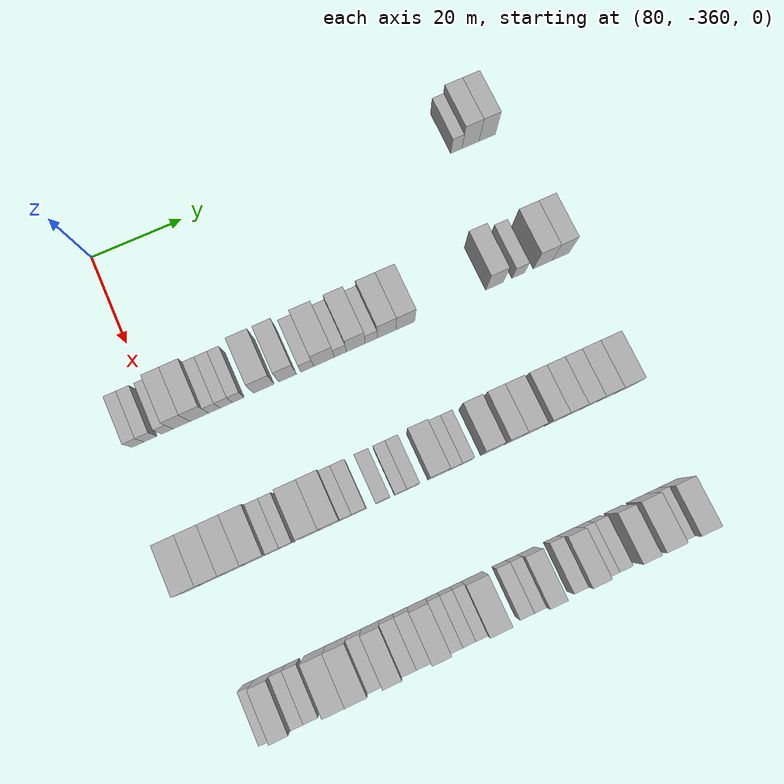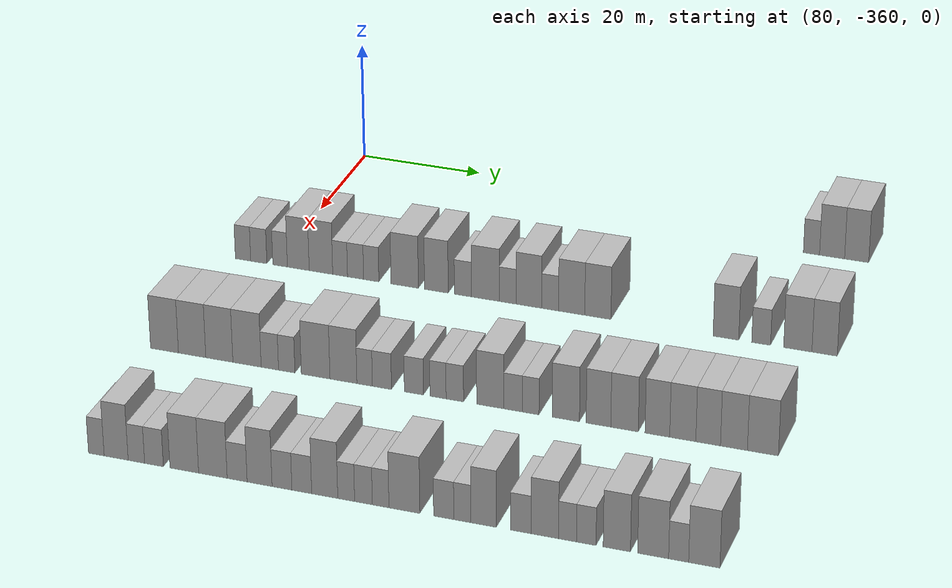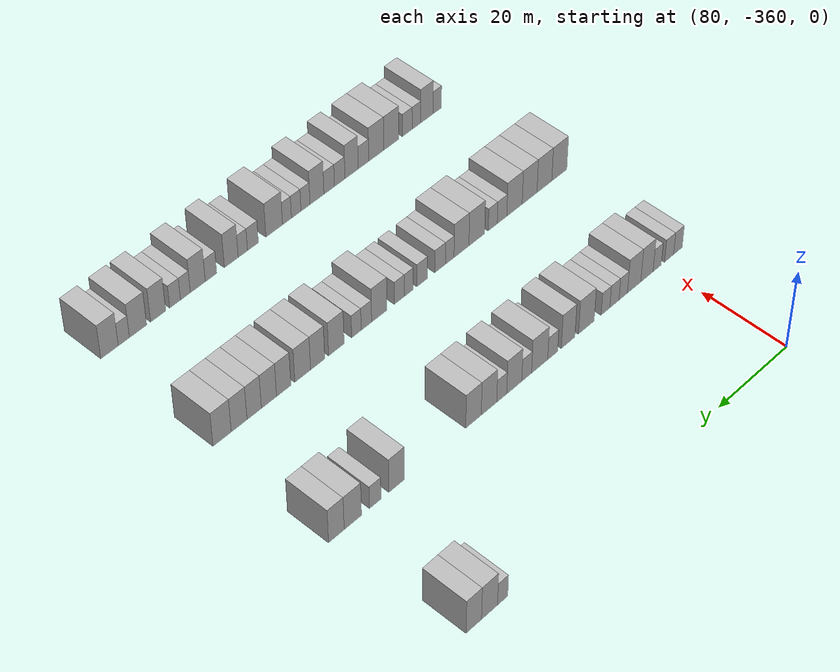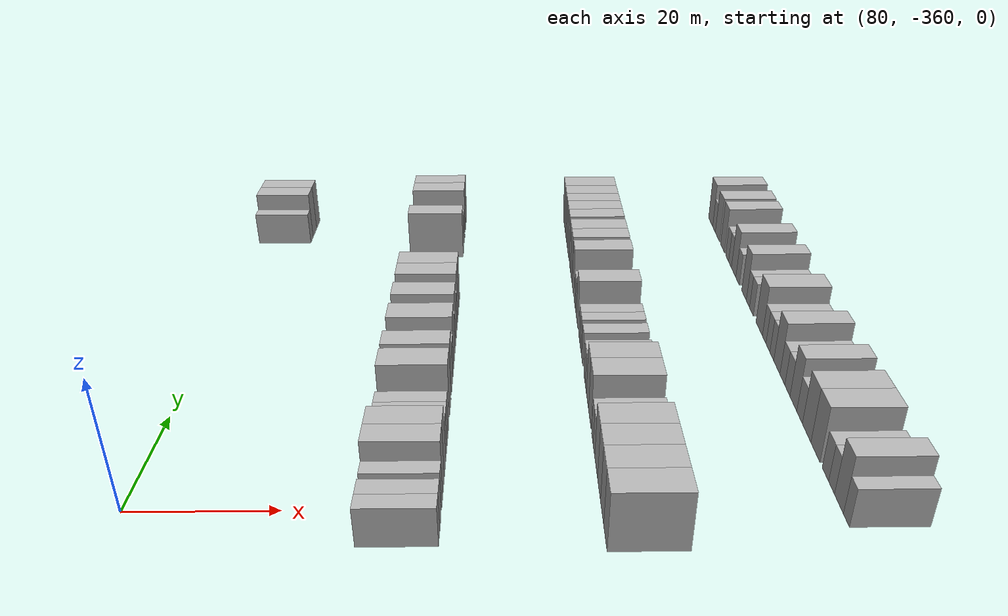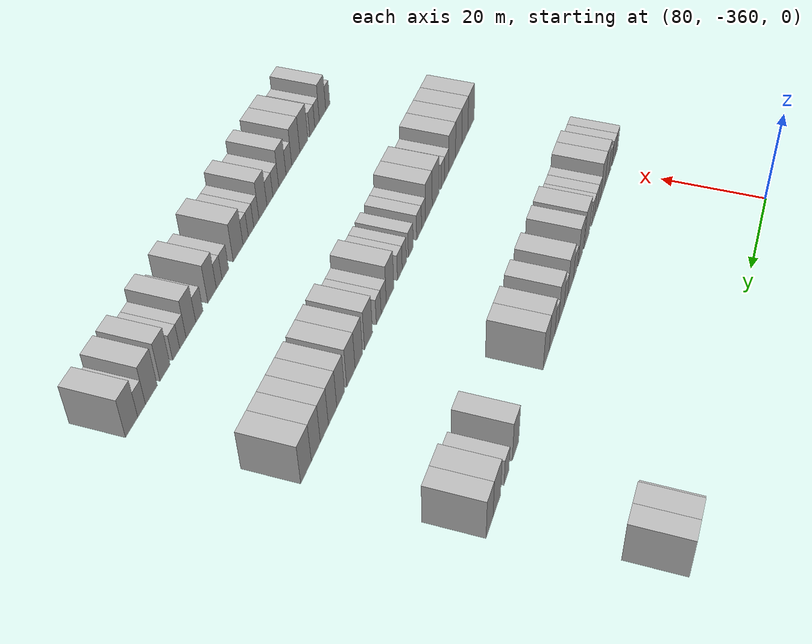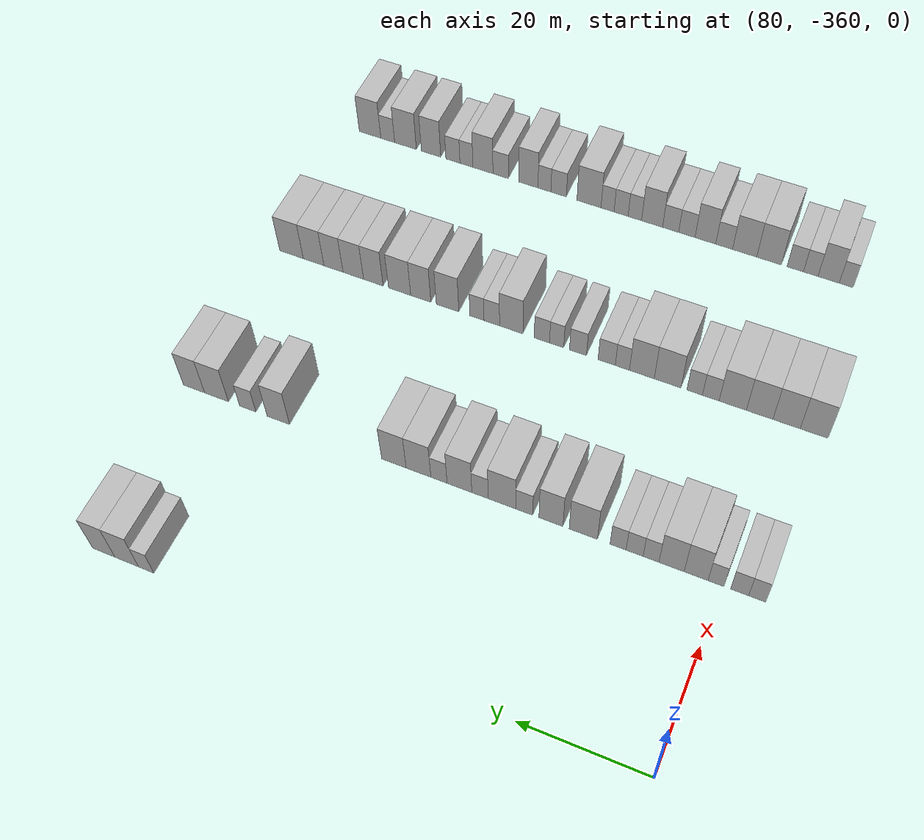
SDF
<sdf version="1.6">
 <world name="default">
  <model name="building_524">
   <static>1</static>
   <pose>85.0000 -281.6470 0 0.000000 0.000000 0.000000</pose>
   <link name="link">
    <pose>0 0 3.00 0 0 0</pose>
    <collision name="collision"><geometry><box><size>10.0000 2.5915 6.0000</size></box></geometry></collision>
    <visual name="visual">
     <cast_shadows>0</cast_shadows>
     <geometry><box><size>10.0000 2.5915 6.0000</size></box></geometry>
     <material>
      <script>
       <uri>model://HANNAS_wall/materials/scripts</uri>
       <uri>model://HANNAS_wall/materials/textures</uri>
       <name>vrc/HANNAS_wall</name>
      </script>
     </material>
    </visual>
   </link>
  </model>
  <model name="building_525">
   <static>1</static>
   <pose>85.0000 -278.3495 0 0.000000 0.000000 0.000000</pose>
   <link name="link">
    <pose>0 0 4.50 0 0 0</pose>
    <collision name="collision"><geometry><box><size>10.0000 4.0034 9.0000</size></box></geometry></collision>
    <visual name="visual">
     <cast_shadows>0</cast_shadows>
     <geometry><box><size>10.0000 4.0034 9.0000</size></box></geometry>
     <material>
      <script>
       <uri>model://HANNAS_wall/materials/scripts</uri>
       <uri>model://HANNAS_wall/materials/textures</uri>
       <name>vrc/HANNAS_wall</name>
      </script>
     </material>
    </visual>
   </link>
  </model>
  <model name="building_526">
   <static>1</static>
   <pose>85.0000 -274.4252 0 0.000000 0.000000 0.000000</pose>
   <link name="link">
    <pose>0 0 4.50 0 0 0</pose>
    <collision name="collision"><geometry><box><size>10.0000 3.8453 9.0000</size></box></geometry></collision>
    <visual name="visual">
     <cast_shadows>0</cast_shadows>
     <geometry><box><size>10.0000 3.8453 9.0000</size></box></geometry>
     <material>
      <script>
       <uri>model://HANNAS_wall/materials/scripts</uri>
       <uri>model://HANNAS_wall/materials/textures</uri>
       <name>vrc/HANNAS_wall</name>
      </script>
     </material>
    </visual>
   </link>
  </model>
  <model name="building_739">
   <static>1</static>
   <pose>115.0000 -365.2040 0 0.000000 0.000000 0.000000</pose>
   <link name="link">
    <pose>0 0 3.00 0 0 0</pose>
    <collision name="collision"><geometry><box><size>10.0000 2.5733 6.0000</size></box></geometry></collision>
    <visual name="visual">
     <cast_shadows>0</cast_shadows>
     <geometry><box><size>10.0000 2.5733 6.0000</size></box></geometry>
     <material>
      <script>
       <uri>model://HANNAS_wall/materials/scripts</uri>
       <uri>model://HANNAS_wall/materials/textures</uri>
       <name>vrc/HANNAS_wall</name>
      </script>
     </material>
    </visual>
   </link>
  </model>
  <model name="building_740">
   <static>1</static>
   <pose>115.0000 -362.5644 0 0.000000 0.000000 0.000000</pose>
   <link name="link">
    <pose>0 0 3.00 0 0 0</pose>
    <collision name="collision"><geometry><box><size>10.0000 2.7059 6.0000</size></box></geometry></collision>
    <visual name="visual">
     <cast_shadows>0</cast_shadows>
     <geometry><box><size>10.0000 2.7059 6.0000</size></box></geometry>
     <material>
      <script>
       <uri>model://HANNAS_wall/materials/scripts</uri>
       <uri>model://HANNAS_wall/materials/textures</uri>
       <name>vrc/HANNAS_wall</name>
      </script>
     </material>
    </visual>
   </link>
  </model>
  <model name="building_741">
   <static>1</static>
   <pose>115.0000 -358.9954 0 0.000000 0.000000 0.000000</pose>
   <link name="link">
    <pose>0 0 3.00 0 0 0</pose>
    <collision name="collision"><geometry><box><size>10.0000 2.4321 6.0000</size></box></geometry></collision>
    <visual name="visual">
     <cast_shadows>0</cast_shadows>
     <geometry><box><size>10.0000 2.4321 6.0000</size></box></geometry>
     <material>
      <script>
       <uri>model://HANNAS_wall/materials/scripts</uri>
       <uri>model://HANNAS_wall/materials/textures</uri>
       <name>vrc/HANNAS_wall</name>
      </script>
     </material>
    </visual>
   </link>
  </model>
  <model name="building_742">
   <static>1</static>
   <pose>115.0000 -355.9613 0 0.000000 0.000000 0.000000</pose>
   <link name="link">
    <pose>0 0 4.50 0 0 0</pose>
    <collision name="collision"><geometry><box><size>10.0000 3.6362 9.0000</size></box></geometry></collision>
    <visual name="visual">
     <cast_shadows>0</cast_shadows>
     <geometry><box><size>10.0000 3.6362 9.0000</size></box></geometry>
     <material>
      <script>
       <uri>model://HANNAS_wall/materials/scripts</uri>
       <uri>model://HANNAS_wall/materials/textures</uri>
       <name>vrc/HANNAS_wall</name>
      </script>
     </material>
    </visual>
   </link>
  </model>
  <model name="building_743">
   <static>1</static>
   <pose>115.0000 -352.1924 0 0.000000 0.000000 0.000000</pose>
   <link name="link">
    <pose>0 0 4.50 0 0 0</pose>
    <collision name="collision"><geometry><box><size>10.0000 3.9015 9.0000</size></box></geometry></collision>
    <visual name="visual">
     <cast_shadows>0</cast_shadows>
     <geometry><box><size>10.0000 3.9015 9.0000</size></box></geometry>
     <material>
      <script>
       <uri>model://HANNAS_wall/materials/scripts</uri>
       <uri>model://HANNAS_wall/materials/textures</uri>
       <name>vrc/HANNAS_wall</name>
      </script>
     </material>
    </visual>
   </link>
  </model>
  <model name="building_744">
   <static>1</static>
   <pose>115.0000 -349.0168 0 0.000000 0.000000 0.000000</pose>
   <link name="link">
    <pose>0 0 3.00 0 0 0</pose>
    <collision name="collision"><geometry><box><size>10.0000 2.4496 6.0000</size></box></geometry></collision>
    <visual name="visual">
     <cast_shadows>0</cast_shadows>
     <geometry><box><size>10.0000 2.4496 6.0000</size></box></geometry>
     <material>
      <script>
       <uri>model://HANNAS_wall/materials/scripts</uri>
       <uri>model://HANNAS_wall/materials/textures</uri>
       <name>vrc/HANNAS_wall</name>
      </script>
     </material>
    </visual>
   </link>
  </model>
  <model name="building_745">
   <static>1</static>
   <pose>115.0000 -346.4626 0 0.000000 0.000000 0.000000</pose>
   <link name="link">
    <pose>0 0 3.00 0 0 0</pose>
    <collision name="collision"><geometry><box><size>10.0000 2.6588 6.0000</size></box></geometry></collision>
    <visual name="visual">
     <cast_shadows>0</cast_shadows>
     <geometry><box><size>10.0000 2.6588 6.0000</size></box></geometry>
     <material>
      <script>
       <uri>model://HANNAS_wall/materials/scripts</uri>
       <uri>model://HANNAS_wall/materials/textures</uri>
       <name>vrc/HANNAS_wall</name>
      </script>
     </material>
    </visual>
   </link>
  </model>
  <model name="building_746">
   <static>1</static>
   <pose>115.0000 -343.8816 0 0.000000 0.000000 0.000000</pose>
   <link name="link">
    <pose>0 0 3.00 0 0 0</pose>
    <collision name="collision"><geometry><box><size>10.0000 2.5032 6.0000</size></box></geometry></collision>
    <visual name="visual">
     <cast_shadows>0</cast_shadows>
     <geometry><box><size>10.0000 2.5032 6.0000</size></box></geometry>
     <material>
      <script>
       <uri>model://HANNAS_wall/materials/scripts</uri>
       <uri>model://HANNAS_wall/materials/textures</uri>
       <name>vrc/HANNAS_wall</name>
      </script>
     </material>
    </visual>
   </link>
  </model>
  <model name="building_747">
   <static>1</static>
   <pose>115.0000 -338.3948 0 0.000000 0.000000 0.000000</pose>
   <link name="link">
    <pose>0 0 4.50 0 0 0</pose>
    <collision name="collision"><geometry><box><size>10.0000 4.4703 9.0000</size></box></geometry></collision>
    <visual name="visual">
     <cast_shadows>0</cast_shadows>
     <geometry><box><size>10.0000 4.4703 9.0000</size></box></geometry>
     <material>
      <script>
       <uri>model://HANNAS_wall/materials/scripts</uri>
       <uri>model://HANNAS_wall/materials/textures</uri>
       <name>vrc/HANNAS_wall</name>
      </script>
     </material>
    </visual>
   </link>
  </model>
  <model name="building_748">
   <static>1</static>
   <pose>115.0000 -333.2340 0 0.000000 0.000000 0.000000</pose>
   <link name="link">
    <pose>0 0 4.50 0 0 0</pose>
    <collision name="collision"><geometry><box><size>10.0000 3.8513 9.0000</size></box></geometry></collision>
    <visual name="visual">
     <cast_shadows>0</cast_shadows>
     <geometry><box><size>10.0000 3.8513 9.0000</size></box></geometry>
     <material>
      <script>
       <uri>model://HANNAS_wall/materials/scripts</uri>
       <uri>model://HANNAS_wall/materials/textures</uri>
       <name>vrc/HANNAS_wall</name>
      </script>
     </material>
    </visual>
   </link>
  </model>
  <model name="building_749">
   <static>1</static>
   <pose>115.0000 -328.9212 0 0.000000 0.000000 0.000000</pose>
   <link name="link">
    <pose>0 0 3.00 0 0 0</pose>
    <collision name="collision"><geometry><box><size>10.0000 2.7742 6.0000</size></box></geometry></collision>
    <visual name="visual">
     <cast_shadows>0</cast_shadows>
     <geometry><box><size>10.0000 2.7742 6.0000</size></box></geometry>
     <material>
      <script>
       <uri>model://HANNAS_wall/materials/scripts</uri>
       <uri>model://HANNAS_wall/materials/textures</uri>
       <name>vrc/HANNAS_wall</name>
      </script>
     </material>
    </visual>
   </link>
  </model>
  <model name="building_750">
   <static>1</static>
   <pose>115.0000 -325.2993 0 0.000000 0.000000 0.000000</pose>
   <link name="link">
    <pose>0 0 4.50 0 0 0</pose>
    <collision name="collision"><geometry><box><size>10.0000 4.4696 9.0000</size></box></geometry></collision>
    <visual name="visual">
     <cast_shadows>0</cast_shadows>
     <geometry><box><size>10.0000 4.4696 9.0000</size></box></geometry>
     <material>
      <script>
       <uri>model://HANNAS_wall/materials/scripts</uri>
       <uri>model://HANNAS_wall/materials/textures</uri>
       <name>vrc/HANNAS_wall</name>
      </script>
     </material>
    </visual>
   </link>
  </model>
  <model name="building_751">
   <static>1</static>
   <pose>115.0000 -321.7180 0 0.000000 0.000000 0.000000</pose>
   <link name="link">
    <pose>0 0 3.00 0 0 0</pose>
    <collision name="collision"><geometry><box><size>10.0000 2.6929 6.0000</size></box></geometry></collision>
    <visual name="visual">
     <cast_shadows>0</cast_shadows>
     <geometry><box><size>10.0000 2.6929 6.0000</size></box></geometry>
     <material>
      <script>
       <uri>model://HANNAS_wall/materials/scripts</uri>
       <uri>model://HANNAS_wall/materials/textures</uri>
       <name>vrc/HANNAS_wall</name>
      </script>
     </material>
    </visual>
   </link>
  </model>
  <model name="building_752">
   <static>1</static>
   <pose>115.0000 -318.3235 0 0.000000 0.000000 0.000000</pose>
   <link name="link">
    <pose>0 0 4.50 0 0 0</pose>
    <collision name="collision"><geometry><box><size>10.0000 4.0961 9.0000</size></box></geometry></collision>
    <visual name="visual">
     <cast_shadows>0</cast_shadows>
     <geometry><box><size>10.0000 4.0961 9.0000</size></box></geometry>
     <material>
      <script>
       <uri>model://HANNAS_wall/materials/scripts</uri>
       <uri>model://HANNAS_wall/materials/textures</uri>
       <name>vrc/HANNAS_wall</name>
      </script>
     </material>
    </visual>
   </link>
  </model>
  <model name="building_753">
   <static>1</static>
   <pose>115.0000 -314.9280 0 0.000000 0.000000 0.000000</pose>
   <link name="link">
    <pose>0 0 3.00 0 0 0</pose>
    <collision name="collision"><geometry><box><size>10.0000 2.6949 6.0000</size></box></geometry></collision>
    <visual name="visual">
     <cast_shadows>0</cast_shadows>
     <geometry><box><size>10.0000 2.6949 6.0000</size></box></geometry>
     <material>
      <script>
       <uri>model://HANNAS_wall/materials/scripts</uri>
       <uri>model://HANNAS_wall/materials/textures</uri>
       <name>vrc/HANNAS_wall</name>
      </script>
     </material>
    </visual>
   </link>
  </model>
  <model name="building_754">
   <static>1</static>
   <pose>115.0000 -311.5054 0 0.000000 0.000000 0.000000</pose>
   <link name="link">
    <pose>0 0 4.50 0 0 0</pose>
    <collision name="collision"><geometry><box><size>10.0000 4.1504 9.0000</size></box></geometry></collision>
    <visual name="visual">
     <cast_shadows>0</cast_shadows>
     <geometry><box><size>10.0000 4.1504 9.0000</size></box></geometry>
     <material>
      <script>
       <uri>model://HANNAS_wall/materials/scripts</uri>
       <uri>model://HANNAS_wall/materials/textures</uri>
       <name>vrc/HANNAS_wall</name>
      </script>
     </material>
    </visual>
   </link>
  </model>
  <model name="building_755">
   <static>1</static>
   <pose>115.0000 -307.3601 0 0.000000 0.000000 0.000000</pose>
   <link name="link">
    <pose>0 0 4.50 0 0 0</pose>
    <collision name="collision"><geometry><box><size>10.0000 4.1402 9.0000</size></box></geometry></collision>
    <visual name="visual">
     <cast_shadows>0</cast_shadows>
     <geometry><box><size>10.0000 4.1402 9.0000</size></box></geometry>
     <material>
      <script>
       <uri>model://HANNAS_wall/materials/scripts</uri>
       <uri>model://HANNAS_wall/materials/textures</uri>
       <name>vrc/HANNAS_wall</name>
      </script>
     </material>
    </visual>
   </link>
  </model>
  <model name="building_756">
   <static>1</static>
   <pose>115.0000 -287.3553 0 0.000000 0.000000 0.000000</pose>
   <link name="link">
    <pose>0 0 4.50 0 0 0</pose>
    <collision name="collision"><geometry><box><size>10.0000 3.9565 9.0000</size></box></geometry></collision>
    <visual name="visual">
     <cast_shadows>0</cast_shadows>
     <geometry><box><size>10.0000 3.9565 9.0000</size></box></geometry>
     <material>
      <script>
       <uri>model://HANNAS_wall/materials/scripts</uri>
       <uri>model://HANNAS_wall/materials/textures</uri>
       <name>vrc/HANNAS_wall</name>
      </script>
     </material>
    </visual>
   </link>
  </model>
  <model name="building_757">
   <static>1</static>
   <pose>115.0000 -281.9286 0 0.000000 0.000000 0.000000</pose>
   <link name="link">
    <pose>0 0 3.00 0 0 0</pose>
    <collision name="collision"><geometry><box><size>10.0000 2.8968 6.0000</size></box></geometry></collision>
    <visual name="visual">
     <cast_shadows>0</cast_shadows>
     <geometry><box><size>10.0000 2.8968 6.0000</size></box></geometry>
     <material>
      <script>
       <uri>model://HANNAS_wall/materials/scripts</uri>
       <uri>model://HANNAS_wall/materials/textures</uri>
       <name>vrc/HANNAS_wall</name>
      </script>
     </material>
    </visual>
   </link>
  </model>
  <model name="building_758">
   <static>1</static>
   <pose>115.0000 -276.3266 0 0.000000 0.000000 0.000000</pose>
   <link name="link">
    <pose>0 0 4.50 0 0 0</pose>
    <collision name="collision"><geometry><box><size>10.0000 4.3071 9.0000</size></box></geometry></collision>
    <visual name="visual">
     <cast_shadows>0</cast_shadows>
     <geometry><box><size>10.0000 4.3071 9.0000</size></box></geometry>
     <material>
      <script>
       <uri>model://HANNAS_wall/materials/scripts</uri>
       <uri>model://HANNAS_wall/materials/textures</uri>
       <name>vrc/HANNAS_wall</name>
      </script>
     </material>
    </visual>
   </link>
  </model>
  <model name="building_759">
   <static>1</static>
   <pose>115.0000 -272.2462 0 0.000000 0.000000 0.000000</pose>
   <link name="link">
    <pose>0 0 4.50 0 0 0</pose>
    <collision name="collision"><geometry><box><size>10.0000 3.8539 9.0000</size></box></geometry></collision>
    <visual name="visual">
     <cast_shadows>0</cast_shadows>
     <geometry><box><size>10.0000 3.8539 9.0000</size></box></geometry>
     <material>
      <script>
       <uri>model://HANNAS_wall/materials/scripts</uri>
       <uri>model://HANNAS_wall/materials/textures</uri>
       <name>vrc/HANNAS_wall</name>
      </script>
     </material>
    </visual>
   </link>
  </model>
  <model name="building_975">
   <static>1</static>
   <pose>145.0000 -365.3476 0 0.000000 0.000000 0.000000</pose>
   <link name="link">
    <pose>0 0 4.50 0 0 0</pose>
    <collision name="collision"><geometry><box><size>10.0000 4.4797 9.0000</size></box></geometry></collision>
    <visual name="visual">
     <cast_shadows>0</cast_shadows>
     <geometry><box><size>10.0000 4.4797 9.0000</size></box></geometry>
     <material>
      <script>
       <uri>model://HANNAS_wall/materials/scripts</uri>
       <uri>model://HANNAS_wall/materials/textures</uri>
       <name>vrc/HANNAS_wall</name>
      </script>
     </material>
    </visual>
   </link>
  </model>
  <model name="building_976">
   <static>1</static>
   <pose>145.0000 -360.9086 0 0.000000 0.000000 0.000000</pose>
   <link name="link">
    <pose>0 0 4.50 0 0 0</pose>
    <collision name="collision"><geometry><box><size>10.0000 4.3983 9.0000</size></box></geometry></collision>
    <visual name="visual">
     <cast_shadows>0</cast_shadows>
     <geometry><box><size>10.0000 4.3983 9.0000</size></box></geometry>
     <material>
      <script>
       <uri>model://HANNAS_wall/materials/scripts</uri>
       <uri>model://HANNAS_wall/materials/textures</uri>
       <name>vrc/HANNAS_wall</name>
      </script>
     </material>
    </visual>
   </link>
  </model>
  <model name="building_977">
   <static>1</static>
   <pose>145.0000 -356.5483 0 0.000000 0.000000 0.000000</pose>
   <link name="link">
    <pose>0 0 4.50 0 0 0</pose>
    <collision name="collision"><geometry><box><size>10.0000 4.3223 9.0000</size></box></geometry></collision>
    <visual name="visual">
     <cast_shadows>0</cast_shadows>
     <geometry><box><size>10.0000 4.3223 9.0000</size></box></geometry>
     <material>
      <script>
       <uri>model://HANNAS_wall/materials/scripts</uri>
       <uri>model://HANNAS_wall/materials/textures</uri>
       <name>vrc/HANNAS_wall</name>
      </script>
     </material>
    </visual>
   </link>
  </model>
  <model name="building_978">
   <static>1</static>
   <pose>145.0000 -352.1425 0 0.000000 0.000000 0.000000</pose>
   <link name="link">
    <pose>0 0 4.50 0 0 0</pose>
    <collision name="collision"><geometry><box><size>10.0000 4.4893 9.0000</size></box></geometry></collision>
    <visual name="visual">
     <cast_shadows>0</cast_shadows>
     <geometry><box><size>10.0000 4.4893 9.0000</size></box></geometry>
     <material>
      <script>
       <uri>model://HANNAS_wall/materials/scripts</uri>
       <uri>model://HANNAS_wall/materials/textures</uri>
       <name>vrc/HANNAS_wall</name>
      </script>
     </material>
    </visual>
   </link>
  </model>
  <model name="building_979">
   <static>1</static>
   <pose>145.0000 -348.5220 0 0.000000 0.000000 0.000000</pose>
   <link name="link">
    <pose>0 0 3.00 0 0 0</pose>
    <collision name="collision"><geometry><box><size>10.0000 2.7518 6.0000</size></box></geometry></collision>
    <visual name="visual">
     <cast_shadows>0</cast_shadows>
     <geometry><box><size>10.0000 2.7518 6.0000</size></box></geometry>
     <material>
      <script>
       <uri>model://HANNAS_wall/materials/scripts</uri>
       <uri>model://HANNAS_wall/materials/textures</uri>
       <name>vrc/HANNAS_wall</name>
      </script>
     </material>
    </visual>
   </link>
  </model>
  <model name="building_980">
   <static>1</static>
   <pose>145.0000 -345.8507 0 0.000000 0.000000 0.000000</pose>
   <link name="link">
    <pose>0 0 3.00 0 0 0</pose>
    <collision name="collision"><geometry><box><size>10.0000 2.5907 6.0000</size></box></geometry></collision>
    <visual name="visual">
     <cast_shadows>0</cast_shadows>
     <geometry><box><size>10.0000 2.5907 6.0000</size></box></geometry>
     <material>
      <script>
       <uri>model://HANNAS_wall/materials/scripts</uri>
       <uri>model://HANNAS_wall/materials/textures</uri>
       <name>vrc/HANNAS_wall</name>
      </script>
     </material>
    </visual>
   </link>
  </model>
  <model name="building_981">
   <static>1</static>
   <pose>145.0000 -341.3061 0 0.000000 0.000000 0.000000</pose>
   <link name="link">
    <pose>0 0 4.50 0 0 0</pose>
    <collision name="collision"><geometry><box><size>10.0000 4.4986 9.0000</size></box></geometry></collision>
    <visual name="visual">
     <cast_shadows>0</cast_shadows>
     <geometry><box><size>10.0000 4.4986 9.0000</size></box></geometry>
     <material>
      <script>
       <uri>model://HANNAS_wall/materials/scripts</uri>
       <uri>model://HANNAS_wall/materials/textures</uri>
       <name>vrc/HANNAS_wall</name>
      </script>
     </material>
    </visual>
   </link>
  </model>
  <model name="building_982">
   <static>1</static>
   <pose>145.0000 -336.9558 0 0.000000 0.000000 0.000000</pose>
   <link name="link">
    <pose>0 0 4.50 0 0 0</pose>
    <collision name="collision"><geometry><box><size>10.0000 4.2020 9.0000</size></box></geometry></collision>
    <visual name="visual">
     <cast_shadows>0</cast_shadows>
     <geometry><box><size>10.0000 4.2020 9.0000</size></box></geometry>
     <material>
      <script>
       <uri>model://HANNAS_wall/materials/scripts</uri>
       <uri>model://HANNAS_wall/materials/textures</uri>
       <name>vrc/HANNAS_wall</name>
      </script>
     </material>
    </visual>
   </link>
  </model>
  <model name="building_983">
   <static>1</static>
   <pose>145.0000 -333.6480 0 0.000000 0.000000 0.000000</pose>
   <link name="link">
    <pose>0 0 3.00 0 0 0</pose>
    <collision name="collision"><geometry><box><size>10.0000 2.4136 6.0000</size></box></geometry></collision>
    <visual name="visual">
     <cast_shadows>0</cast_shadows>
     <geometry><box><size>10.0000 2.4136 6.0000</size></box></geometry>
     <material>
      <script>
       <uri>model://HANNAS_wall/materials/scripts</uri>
       <uri>model://HANNAS_wall/materials/textures</uri>
       <name>vrc/HANNAS_wall</name>
      </script>
     </material>
    </visual>
   </link>
  </model>
  <model name="building_984">
   <static>1</static>
   <pose>145.0000 -330.9645 0 0.000000 0.000000 0.000000</pose>
   <link name="link">
    <pose>0 0 3.00 0 0 0</pose>
    <collision name="collision"><geometry><box><size>10.0000 2.9533 6.0000</size></box></geometry></collision>
    <visual name="visual">
     <cast_shadows>0</cast_shadows>
     <geometry><box><size>10.0000 2.9533 6.0000</size></box></geometry>
     <material>
      <script>
       <uri>model://HANNAS_wall/materials/scripts</uri>
       <uri>model://HANNAS_wall/materials/textures</uri>
       <name>vrc/HANNAS_wall</name>
      </script>
     </material>
    </visual>
   </link>
  </model>
  <model name="building_985">
   <static>1</static>
   <pose>145.0000 -326.0192 0 0.000000 0.000000 0.000000</pose>
   <link name="link">
    <pose>0 0 3.00 0 0 0</pose>
    <collision name="collision"><geometry><box><size>10.0000 2.9374 6.0000</size></box></geometry></collision>
    <visual name="visual">
     <cast_shadows>0</cast_shadows>
     <geometry><box><size>10.0000 2.9374 6.0000</size></box></geometry>
     <material>
      <script>
       <uri>model://HANNAS_wall/materials/scripts</uri>
       <uri>model://HANNAS_wall/materials/textures</uri>
       <name>vrc/HANNAS_wall</name>
      </script>
     </material>
    </visual>
   </link>
  </model>
  <model name="building_986">
   <static>1</static>
   <pose>145.0000 -322.3110 0 0.000000 0.000000 0.000000</pose>
   <link name="link">
    <pose>0 0 3.00 0 0 0</pose>
    <collision name="collision"><geometry><box><size>10.0000 2.4791 6.0000</size></box></geometry></collision>
    <visual name="visual">
     <cast_shadows>0</cast_shadows>
     <geometry><box><size>10.0000 2.4791 6.0000</size></box></geometry>
     <material>
      <script>
       <uri>model://HANNAS_wall/materials/scripts</uri>
       <uri>model://HANNAS_wall/materials/textures</uri>
       <name>vrc/HANNAS_wall</name>
      </script>
     </material>
    </visual>
   </link>
  </model>
  <model name="building_987">
   <static>1</static>
   <pose>145.0000 -319.7333 0 0.000000 0.000000 0.000000</pose>
   <link name="link">
    <pose>0 0 3.00 0 0 0</pose>
    <collision name="collision"><geometry><box><size>10.0000 2.6763 6.0000</size></box></geometry></collision>
    <visual name="visual">
     <cast_shadows>0</cast_shadows>
     <geometry><box><size>10.0000 2.6763 6.0000</size></box></geometry>
     <material>
      <script>
       <uri>model://HANNAS_wall/materials/scripts</uri>
       <uri>model://HANNAS_wall/materials/textures</uri>
       <name>vrc/HANNAS_wall</name>
      </script>
     </material>
    </visual>
   </link>
  </model>
  <model name="building_988">
   <static>1</static>
   <pose>145.0000 -314.3207 0 0.000000 0.000000 0.000000</pose>
   <link name="link">
    <pose>0 0 4.50 0 0 0</pose>
    <collision name="collision"><geometry><box><size>10.0000 4.1488 9.0000</size></box></geometry></collision>
    <visual name="visual">
     <cast_shadows>0</cast_shadows>
     <geometry><box><size>10.0000 4.1488 9.0000</size></box></geometry>
     <material>
      <script>
       <uri>model://HANNAS_wall/materials/scripts</uri>
       <uri>model://HANNAS_wall/materials/textures</uri>
       <name>vrc/HANNAS_wall</name>
      </script>
     </material>
    </visual>
   </link>
  </model>
  <model name="building_989">
   <static>1</static>
   <pose>145.0000 -310.8600 0 0.000000 0.000000 0.000000</pose>
   <link name="link">
    <pose>0 0 3.00 0 0 0</pose>
    <collision name="collision"><geometry><box><size>10.0000 2.7726 6.0000</size></box></geometry></collision>
    <visual name="visual">
     <cast_shadows>0</cast_shadows>
     <geometry><box><size>10.0000 2.7726 6.0000</size></box></geometry>
     <material>
      <script>
       <uri>model://HANNAS_wall/materials/scripts</uri>
       <uri>model://HANNAS_wall/materials/textures</uri>
       <name>vrc/HANNAS_wall</name>
      </script>
     </material>
    </visual>
   </link>
  </model>
  <model name="building_990">
   <static>1</static>
   <pose>145.0000 -308.2134 0 0.000000 0.000000 0.000000</pose>
   <link name="link">
    <pose>0 0 3.00 0 0 0</pose>
    <collision name="collision"><geometry><box><size>10.0000 2.5207 6.0000</size></box></geometry></collision>
    <visual name="visual">
     <cast_shadows>0</cast_shadows>
     <geometry><box><size>10.0000 2.5207 6.0000</size></box></geometry>
     <material>
      <script>
       <uri>model://HANNAS_wall/materials/scripts</uri>
       <uri>model://HANNAS_wall/materials/textures</uri>
       <name>vrc/HANNAS_wall</name>
      </script>
     </material>
    </visual>
   </link>
  </model>
  <model name="building_991">
   <static>1</static>
   <pose>145.0000 -302.9136 0 0.000000 0.000000 0.000000</pose>
   <link name="link">
    <pose>0 0 4.50 0 0 0</pose>
    <collision name="collision"><geometry><box><size>10.0000 4.0789 9.0000</size></box></geometry></collision>
    <visual name="visual">
     <cast_shadows>0</cast_shadows>
     <geometry><box><size>10.0000 4.0789 9.0000</size></box></geometry>
     <material>
      <script>
       <uri>model://HANNAS_wall/materials/scripts</uri>
       <uri>model://HANNAS_wall/materials/textures</uri>
       <name>vrc/HANNAS_wall</name>
      </script>
     </material>
    </visual>
   </link>
  </model>
  <model name="building_992">
   <static>1</static>
   <pose>145.0000 -298.0354 0 0.000000 0.000000 0.000000</pose>
   <link name="link">
    <pose>0 0 4.50 0 0 0</pose>
    <collision name="collision"><geometry><box><size>10.0000 3.6775 9.0000</size></box></geometry></collision>
    <visual name="visual">
     <cast_shadows>0</cast_shadows>
     <geometry><box><size>10.0000 3.6775 9.0000</size></box></geometry>
     <material>
      <script>
       <uri>model://HANNAS_wall/materials/scripts</uri>
       <uri>model://HANNAS_wall/materials/textures</uri>
       <name>vrc/HANNAS_wall</name>
      </script>
     </material>
    </visual>
   </link>
  </model>
  <model name="building_993">
   <static>1</static>
   <pose>145.0000 -294.1533 0 0.000000 0.000000 0.000000</pose>
   <link name="link">
    <pose>0 0 4.50 0 0 0</pose>
    <collision name="collision"><geometry><box><size>10.0000 4.0867 9.0000</size></box></geometry></collision>
    <visual name="visual">
     <cast_shadows>0</cast_shadows>
     <geometry><box><size>10.0000 4.0867 9.0000</size></box></geometry>
     <material>
      <script>
       <uri>model://HANNAS_wall/materials/scripts</uri>
       <uri>model://HANNAS_wall/materials/textures</uri>
       <name>vrc/HANNAS_wall</name>
      </script>
     </material>
    </visual>
   </link>
  </model>
  <model name="building_994">
   <static>1</static>
   <pose>145.0000 -289.2895 0 0.000000 0.000000 0.000000</pose>
   <link name="link">
    <pose>0 0 4.50 0 0 0</pose>
    <collision name="collision"><geometry><box><size>10.0000 3.6409 9.0000</size></box></geometry></collision>
    <visual name="visual">
     <cast_shadows>0</cast_shadows>
     <geometry><box><size>10.0000 3.6409 9.0000</size></box></geometry>
     <material>
      <script>
       <uri>model://HANNAS_wall/materials/scripts</uri>
       <uri>model://HANNAS_wall/materials/textures</uri>
       <name>vrc/HANNAS_wall</name>
      </script>
     </material>
    </visual>
   </link>
  </model>
  <model name="building_995">
   <static>1</static>
   <pose>145.0000 -285.5498 0 0.000000 0.000000 0.000000</pose>
   <link name="link">
    <pose>0 0 4.50 0 0 0</pose>
    <collision name="collision"><geometry><box><size>10.0000 3.8386 9.0000</size></box></geometry></collision>
    <visual name="visual">
     <cast_shadows>0</cast_shadows>
     <geometry><box><size>10.0000 3.8386 9.0000</size></box></geometry>
     <material>
      <script>
       <uri>model://HANNAS_wall/materials/scripts</uri>
       <uri>model://HANNAS_wall/materials/textures</uri>
       <name>vrc/HANNAS_wall</name>
      </script>
     </material>
    </visual>
   </link>
  </model>
  <model name="building_996">
   <static>1</static>
   <pose>145.0000 -281.8258 0 0.000000 0.000000 0.000000</pose>
   <link name="link">
    <pose>0 0 4.50 0 0 0</pose>
    <collision name="collision"><geometry><box><size>10.0000 3.6093 9.0000</size></box></geometry></collision>
    <visual name="visual">
     <cast_shadows>0</cast_shadows>
     <geometry><box><size>10.0000 3.6093 9.0000</size></box></geometry>
     <material>
      <script>
       <uri>model://HANNAS_wall/materials/scripts</uri>
       <uri>model://HANNAS_wall/materials/textures</uri>
       <name>vrc/HANNAS_wall</name>
      </script>
     </material>
    </visual>
   </link>
  </model>
  <model name="building_997">
   <static>1</static>
   <pose>145.0000 -278.0569 0 0.000000 0.000000 0.000000</pose>
   <link name="link">
    <pose>0 0 4.50 0 0 0</pose>
    <collision name="collision"><geometry><box><size>10.0000 3.9286 9.0000</size></box></geometry></collision>
    <visual name="visual">
     <cast_shadows>0</cast_shadows>
     <geometry><box><size>10.0000 3.9286 9.0000</size></box></geometry>
     <material>
      <script>
       <uri>model://HANNAS_wall/materials/scripts</uri>
       <uri>model://HANNAS_wall/materials/textures</uri>
       <name>vrc/HANNAS_wall</name>
      </script>
     </material>
    </visual>
   </link>
  </model>
  <model name="building_998">
   <static>1</static>
   <pose>145.0000 -273.8429 0 0.000000 0.000000 0.000000</pose>
   <link name="link">
    <pose>0 0 4.50 0 0 0</pose>
    <collision name="collision"><geometry><box><size>10.0000 4.4993 9.0000</size></box></geometry></collision>
    <visual name="visual">
     <cast_shadows>0</cast_shadows>
     <geometry><box><size>10.0000 4.4993 9.0000</size></box></geometry>
     <material>
      <script>
       <uri>model://HANNAS_wall/materials/scripts</uri>
       <uri>model://HANNAS_wall/materials/textures</uri>
       <name>vrc/HANNAS_wall</name>
      </script>
     </material>
    </visual>
   </link>
  </model>
  <model name="building_1213">
   <static>1</static>
   <pose>175.0000 -362.5850 0 0.000000 0.000000 0.000000</pose>
   <link name="link">
    <pose>0 0 3.00 0 0 0</pose>
    <collision name="collision"><geometry><box><size>10.0000 2.4026 6.0000</size></box></geometry></collision>
    <visual name="visual">
     <cast_shadows>0</cast_shadows>
     <geometry><box><size>10.0000 2.4026 6.0000</size></box></geometry>
     <material>
      <script>
       <uri>model://HANNAS_wall/materials/scripts</uri>
       <uri>model://HANNAS_wall/materials/textures</uri>
       <name>vrc/HANNAS_wall</name>
      </script>
     </material>
    </visual>
   </link>
  </model>
  <model name="building_1214">
   <static>1</static>
   <pose>175.0000 -359.5479 0 0.000000 0.000000 0.000000</pose>
   <link name="link">
    <pose>0 0 4.50 0 0 0</pose>
    <collision name="collision"><geometry><box><size>10.0000 3.6714 9.0000</size></box></geometry></collision>
    <visual name="visual">
     <cast_shadows>0</cast_shadows>
     <geometry><box><size>10.0000 3.6714 9.0000</size></box></geometry>
     <material>
      <script>
       <uri>model://HANNAS_wall/materials/scripts</uri>
       <uri>model://HANNAS_wall/materials/textures</uri>
       <name>vrc/HANNAS_wall</name>
      </script>
     </material>
    </visual>
   </link>
  </model>
  <model name="building_1215">
   <static>1</static>
   <pose>175.0000 -356.4560 0 0.000000 0.000000 0.000000</pose>
   <link name="link">
    <pose>0 0 3.00 0 0 0</pose>
    <collision name="collision"><geometry><box><size>10.0000 2.5125 6.0000</size></box></geometry></collision>
    <visual name="visual">
     <cast_shadows>0</cast_shadows>
     <geometry><box><size>10.0000 2.5125 6.0000</size></box></geometry>
     <material>
      <script>
       <uri>model://HANNAS_wall/materials/scripts</uri>
       <uri>model://HANNAS_wall/materials/textures</uri>
       <name>vrc/HANNAS_wall</name>
      </script>
     </material>
    </visual>
   </link>
  </model>
  <model name="building_1216">
   <static>1</static>
   <pose>175.0000 -353.7731 0 0.000000 0.000000 0.000000</pose>
   <link name="link">
    <pose>0 0 3.00 0 0 0</pose>
    <collision name="collision"><geometry><box><size>10.0000 2.8532 6.0000</size></box></geometry></collision>
    <visual name="visual">
     <cast_shadows>0</cast_shadows>
     <geometry><box><size>10.0000 2.8532 6.0000</size></box></geometry>
     <material>
      <script>
       <uri>model://HANNAS_wall/materials/scripts</uri>
       <uri>model://HANNAS_wall/materials/textures</uri>
       <name>vrc/HANNAS_wall</name>
      </script>
     </material>
    </visual>
   </link>
  </model>
  <model name="building_1217">
   <static>1</static>
   <pose>175.0000 -349.1778 0 0.000000 0.000000 0.000000</pose>
   <link name="link">
    <pose>0 0 4.50 0 0 0</pose>
    <collision name="collision"><geometry><box><size>10.0000 4.3375 9.0000</size></box></geometry></collision>
    <visual name="visual">
     <cast_shadows>0</cast_shadows>
     <geometry><box><size>10.0000 4.3375 9.0000</size></box></geometry>
     <material>
      <script>
       <uri>model://HANNAS_wall/materials/scripts</uri>
       <uri>model://HANNAS_wall/materials/textures</uri>
       <name>vrc/HANNAS_wall</name>
      </script>
     </material>
    </visual>
   </link>
  </model>
  <model name="building_1218">
   <static>1</static>
   <pose>175.0000 -344.8611 0 0.000000 0.000000 0.000000</pose>
   <link name="link">
    <pose>0 0 4.50 0 0 0</pose>
    <collision name="collision"><geometry><box><size>10.0000 4.2958 9.0000</size></box></geometry></collision>
    <visual name="visual">
     <cast_shadows>0</cast_shadows>
     <geometry><box><size>10.0000 4.2958 9.0000</size></box></geometry>
     <material>
      <script>
       <uri>model://HANNAS_wall/materials/scripts</uri>
       <uri>model://HANNAS_wall/materials/textures</uri>
       <name>vrc/HANNAS_wall</name>
      </script>
     </material>
    </visual>
   </link>
  </model>
  <model name="building_1219">
   <static>1</static>
   <pose>175.0000 -341.2174 0 0.000000 0.000000 0.000000</pose>
   <link name="link">
    <pose>0 0 3.00 0 0 0</pose>
    <collision name="collision"><geometry><box><size>10.0000 2.9918 6.0000</size></box></geometry></collision>
    <visual name="visual">
     <cast_shadows>0</cast_shadows>
     <geometry><box><size>10.0000 2.9918 6.0000</size></box></geometry>
     <material>
      <script>
       <uri>model://HANNAS_wall/materials/scripts</uri>
       <uri>model://HANNAS_wall/materials/textures</uri>
       <name>vrc/HANNAS_wall</name>
      </script>
     </material>
    </visual>
   </link>
  </model>
  <model name="building_1220">
   <static>1</static>
   <pose>175.0000 -337.8599 0 0.000000 0.000000 0.000000</pose>
   <link name="link">
    <pose>0 0 4.50 0 0 0</pose>
    <collision name="collision"><geometry><box><size>10.0000 3.7230 9.0000</size></box></geometry></collision>
    <visual name="visual">
     <cast_shadows>0</cast_shadows>
     <geometry><box><size>10.0000 3.7230 9.0000</size></box></geometry>
     <material>
      <script>
       <uri>model://HANNAS_wall/materials/scripts</uri>
       <uri>model://HANNAS_wall/materials/textures</uri>
       <name>vrc/HANNAS_wall</name>
      </script>
     </material>
    </visual>
   </link>
  </model>
  <model name="building_1221">
   <static>1</static>
   <pose>175.0000 -334.5245 0 0.000000 0.000000 0.000000</pose>
   <link name="link">
    <pose>0 0 3.00 0 0 0</pose>
    <collision name="collision"><geometry><box><size>10.0000 2.9479 6.0000</size></box></geometry></collision>
    <visual name="visual">
     <cast_shadows>0</cast_shadows>
     <geometry><box><size>10.0000 2.9479 6.0000</size></box></geometry>
     <material>
      <script>
       <uri>model://HANNAS_wall/materials/scripts</uri>
       <uri>model://HANNAS_wall/materials/textures</uri>
       <name>vrc/HANNAS_wall</name>
      </script>
     </material>
    </visual>
   </link>
  </model>
  <model name="building_1222">
   <static>1</static>
   <pose>175.0000 -331.5865 0 0.000000 0.000000 0.000000</pose>
   <link name="link">
    <pose>0 0 3.00 0 0 0</pose>
    <collision name="collision"><geometry><box><size>10.0000 2.9281 6.0000</size></box></geometry></collision>
    <visual name="visual">
     <cast_shadows>0</cast_shadows>
     <geometry><box><size>10.0000 2.9281 6.0000</size></box></geometry>
     <material>
      <script>
       <uri>model://HANNAS_wall/materials/scripts</uri>
       <uri>model://HANNAS_wall/materials/textures</uri>
       <name>vrc/HANNAS_wall</name>
      </script>
     </material>
    </visual>
   </link>
  </model>
  <model name="building_1223">
   <static>1</static>
   <pose>175.0000 -328.1985 0 0.000000 0.000000 0.000000</pose>
   <link name="link">
    <pose>0 0 4.50 0 0 0</pose>
    <collision name="collision"><geometry><box><size>10.0000 3.8478 9.0000</size></box></geometry></collision>
    <visual name="visual">
     <cast_shadows>0</cast_shadows>
     <geometry><box><size>10.0000 3.8478 9.0000</size></box></geometry>
     <material>
      <script>
       <uri>model://HANNAS_wall/materials/scripts</uri>
       <uri>model://HANNAS_wall/materials/textures</uri>
       <name>vrc/HANNAS_wall</name>
      </script>
     </material>
    </visual>
   </link>
  </model>
  <model name="building_1224">
   <static>1</static>
   <pose>175.0000 -325.0377 0 0.000000 0.000000 0.000000</pose>
   <link name="link">
    <pose>0 0 3.00 0 0 0</pose>
    <collision name="collision"><geometry><box><size>10.0000 2.4739 6.0000</size></box></geometry></collision>
    <visual name="visual">
     <cast_shadows>0</cast_shadows>
     <geometry><box><size>10.0000 2.4739 6.0000</size></box></geometry>
     <material>
      <script>
       <uri>model://HANNAS_wall/materials/scripts</uri>
       <uri>model://HANNAS_wall/materials/textures</uri>
       <name>vrc/HANNAS_wall</name>
      </script>
     </material>
    </visual>
   </link>
  </model>
  <model name="building_1225">
   <static>1</static>
   <pose>175.0000 -322.5025 0 0.000000 0.000000 0.000000</pose>
   <link name="link">
    <pose>0 0 3.00 0 0 0</pose>
    <collision name="collision"><geometry><box><size>10.0000 2.5965 6.0000</size></box></geometry></collision>
    <visual name="visual">
     <cast_shadows>0</cast_shadows>
     <geometry><box><size>10.0000 2.5965 6.0000</size></box></geometry>
     <material>
      <script>
       <uri>model://HANNAS_wall/materials/scripts</uri>
       <uri>model://HANNAS_wall/materials/textures</uri>
       <name>vrc/HANNAS_wall</name>
      </script>
     </material>
    </visual>
   </link>
  </model>
  <model name="building_1226">
   <static>1</static>
   <pose>175.0000 -319.9931 0 0.000000 0.000000 0.000000</pose>
   <link name="link">
    <pose>0 0 3.00 0 0 0</pose>
    <collision name="collision"><geometry><box><size>10.0000 2.4224 6.0000</size></box></geometry></collision>
    <visual name="visual">
     <cast_shadows>0</cast_shadows>
     <geometry><box><size>10.0000 2.4224 6.0000</size></box></geometry>
     <material>
      <script>
       <uri>model://HANNAS_wall/materials/scripts</uri>
       <uri>model://HANNAS_wall/materials/textures</uri>
       <name>vrc/HANNAS_wall</name>
      </script>
     </material>
    </visual>
   </link>
  </model>
  <model name="building_1227">
   <static>1</static>
   <pose>175.0000 -316.5333 0 0.000000 0.000000 0.000000</pose>
   <link name="link">
    <pose>0 0 4.50 0 0 0</pose>
    <collision name="collision"><geometry><box><size>10.0000 4.4971 9.0000</size></box></geometry></collision>
    <visual name="visual">
     <cast_shadows>0</cast_shadows>
     <geometry><box><size>10.0000 4.4971 9.0000</size></box></geometry>
     <material>
      <script>
       <uri>model://HANNAS_wall/materials/scripts</uri>
       <uri>model://HANNAS_wall/materials/textures</uri>
       <name>vrc/HANNAS_wall</name>
      </script>
     </material>
    </visual>
   </link>
  </model>
  <model name="building_1228">
   <static>1</static>
   <pose>175.0000 -310.8313 0 0.000000 0.000000 0.000000</pose>
   <link name="link">
    <pose>0 0 3.00 0 0 0</pose>
    <collision name="collision"><geometry><box><size>10.0000 2.9070 6.0000</size></box></geometry></collision>
    <visual name="visual">
     <cast_shadows>0</cast_shadows>
     <geometry><box><size>10.0000 2.9070 6.0000</size></box></geometry>
     <material>
      <script>
       <uri>model://HANNAS_wall/materials/scripts</uri>
       <uri>model://HANNAS_wall/materials/textures</uri>
       <name>vrc/HANNAS_wall</name>
      </script>
     </material>
    </visual>
   </link>
  </model>
  <model name="building_1229">
   <static>1</static>
   <pose>175.0000 -308.1475 0 0.000000 0.000000 0.000000</pose>
   <link name="link">
    <pose>0 0 3.00 0 0 0</pose>
    <collision name="collision"><geometry><box><size>10.0000 2.4606 6.0000</size></box></geometry></collision>
    <visual name="visual">
     <cast_shadows>0</cast_shadows>
     <geometry><box><size>10.0000 2.4606 6.0000</size></box></geometry>
     <material>
      <script>
       <uri>model://HANNAS_wall/materials/scripts</uri>
       <uri>model://HANNAS_wall/materials/textures</uri>
       <name>vrc/HANNAS_wall</name>
      </script>
     </material>
    </visual>
   </link>
  </model>
  <model name="building_1230">
   <static>1</static>
   <pose>175.0000 -305.0957 0 0.000000 0.000000 0.000000</pose>
   <link name="link">
    <pose>0 0 4.50 0 0 0</pose>
    <collision name="collision"><geometry><box><size>10.0000 3.6429 9.0000</size></box></geometry></collision>
    <visual name="visual">
     <cast_shadows>0</cast_shadows>
     <geometry><box><size>10.0000 3.6429 9.0000</size></box></geometry>
     <material>
      <script>
       <uri>model://HANNAS_wall/materials/scripts</uri>
       <uri>model://HANNAS_wall/materials/textures</uri>
       <name>vrc/HANNAS_wall</name>
      </script>
     </material>
    </visual>
   </link>
  </model>
  <model name="building_1231">
   <static>1</static>
   <pose>175.0000 -299.7875 0 0.000000 0.000000 0.000000</pose>
   <link name="link">
    <pose>0 0 3.00 0 0 0</pose>
    <collision name="collision"><geometry><box><size>10.0000 2.9736 6.0000</size></box></geometry></collision>
    <visual name="visual">
     <cast_shadows>0</cast_shadows>
     <geometry><box><size>10.0000 2.9736 6.0000</size></box></geometry>
     <material>
      <script>
       <uri>model://HANNAS_wall/materials/scripts</uri>
       <uri>model://HANNAS_wall/materials/textures</uri>
       <name>vrc/HANNAS_wall</name>
      </script>
     </material>
    </visual>
   </link>
  </model>
  <model name="building_1232">
   <static>1</static>
   <pose>175.0000 -296.3600 0 0.000000 0.000000 0.000000</pose>
   <link name="link">
    <pose>0 0 4.50 0 0 0</pose>
    <collision name="collision"><geometry><box><size>10.0000 3.8813 9.0000</size></box></geometry></collision>
    <visual name="visual">
     <cast_shadows>0</cast_shadows>
     <geometry><box><size>10.0000 3.8813 9.0000</size></box></geometry>
     <material>
      <script>
       <uri>model://HANNAS_wall/materials/scripts</uri>
       <uri>model://HANNAS_wall/materials/textures</uri>
       <name>vrc/HANNAS_wall</name>
      </script>
     </material>
    </visual>
   </link>
  </model>
  <model name="building_1233">
   <static>1</static>
   <pose>175.0000 -293.1562 0 0.000000 0.000000 0.000000</pose>
   <link name="link">
    <pose>0 0 3.00 0 0 0</pose>
    <collision name="collision"><geometry><box><size>10.0000 2.5263 6.0000</size></box></geometry></collision>
    <visual name="visual">
     <cast_shadows>0</cast_shadows>
     <geometry><box><size>10.0000 2.5263 6.0000</size></box></geometry>
     <material>
      <script>
       <uri>model://HANNAS_wall/materials/scripts</uri>
       <uri>model://HANNAS_wall/materials/textures</uri>
       <name>vrc/HANNAS_wall</name>
      </script>
     </material>
    </visual>
   </link>
  </model>
  <model name="building_1234">
   <static>1</static>
   <pose>175.0000 -290.5150 0 0.000000 0.000000 0.000000</pose>
   <link name="link">
    <pose>0 0 3.00 0 0 0</pose>
    <collision name="collision"><geometry><box><size>10.0000 2.7561 6.0000</size></box></geometry></collision>
    <visual name="visual">
     <cast_shadows>0</cast_shadows>
     <geometry><box><size>10.0000 2.7561 6.0000</size></box></geometry>
     <material>
      <script>
       <uri>model://HANNAS_wall/materials/scripts</uri>
       <uri>model://HANNAS_wall/materials/textures</uri>
       <name>vrc/HANNAS_wall</name>
      </script>
     </material>
    </visual>
   </link>
  </model>
  <model name="building_1235">
   <static>1</static>
   <pose>175.0000 -286.2253 0 0.000000 0.000000 0.000000</pose>
   <link name="link">
    <pose>0 0 4.50 0 0 0</pose>
    <collision name="collision"><geometry><box><size>10.0000 3.8234 9.0000</size></box></geometry></collision>
    <visual name="visual">
     <cast_shadows>0</cast_shadows>
     <geometry><box><size>10.0000 3.8234 9.0000</size></box></geometry>
     <material>
      <script>
       <uri>model://HANNAS_wall/materials/scripts</uri>
       <uri>model://HANNAS_wall/materials/textures</uri>
       <name>vrc/HANNAS_wall</name>
      </script>
     </material>
    </visual>
   </link>
  </model>
  <model name="building_1236">
   <static>1</static>
   <pose>175.0000 -281.1597 0 0.000000 0.000000 0.000000</pose>
   <link name="link">
    <pose>0 0 4.50 0 0 0</pose>
    <collision name="collision"><geometry><box><size>10.0000 4.3078 9.0000</size></box></geometry></collision>
    <visual name="visual">
     <cast_shadows>0</cast_shadows>
     <geometry><box><size>10.0000 4.3078 9.0000</size></box></geometry>
     <material>
      <script>
       <uri>model://HANNAS_wall/materials/scripts</uri>
       <uri>model://HANNAS_wall/materials/textures</uri>
       <name>vrc/HANNAS_wall</name>
      </script>
     </material>
    </visual>
   </link>
  </model>
  <model name="building_1237">
   <static>1</static>
   <pose>175.0000 -277.6174 0 0.000000 0.000000 0.000000</pose>
   <link name="link">
    <pose>0 0 3.00 0 0 0</pose>
    <collision name="collision"><geometry><box><size>10.0000 2.7768 6.0000</size></box></geometry></collision>
    <visual name="visual">
     <cast_shadows>0</cast_shadows>
     <geometry><box><size>10.0000 2.7768 6.0000</size></box></geometry>
     <material>
      <script>
       <uri>model://HANNAS_wall/materials/scripts</uri>
       <uri>model://HANNAS_wall/materials/textures</uri>
       <name>vrc/HANNAS_wall</name>
      </script>
     </material>
    </visual>
   </link>
  </model>
  <model name="building_1238">
   <static>1</static>
   <pose>175.0000 -274.0692 0 0.000000 0.000000 0.000000</pose>
   <link name="link">
    <pose>0 0 4.50 0 0 0</pose>
    <collision name="collision"><geometry><box><size>10.0000 4.3195 9.0000</size></box></geometry></collision>
    <visual name="visual">
     <cast_shadows>0</cast_shadows>
     <geometry><box><size>10.0000 4.3195 9.0000</size></box></geometry>
     <material>
      <script>
       <uri>model://HANNAS_wall/materials/scripts</uri>
       <uri>model://HANNAS_wall/materials/textures</uri>
       <name>vrc/HANNAS_wall</name>
      </script>
     </material>
    </visual>
   </link>
  </model>
 </world>
</sdf>
